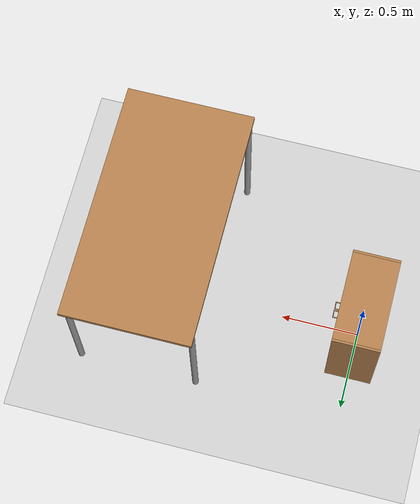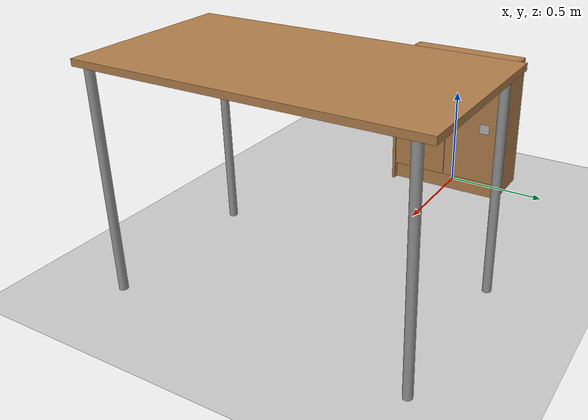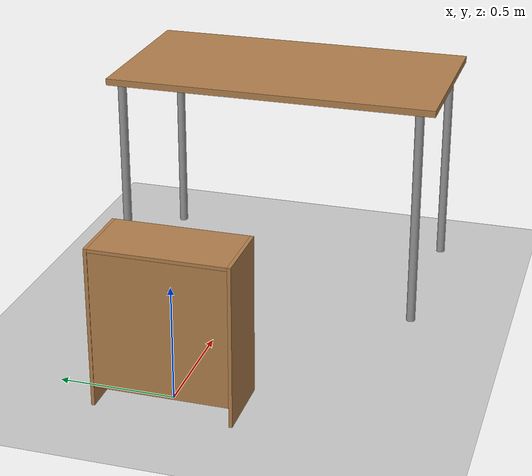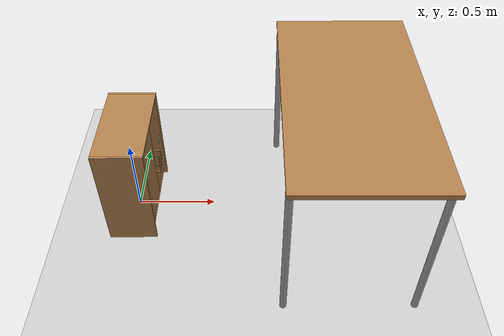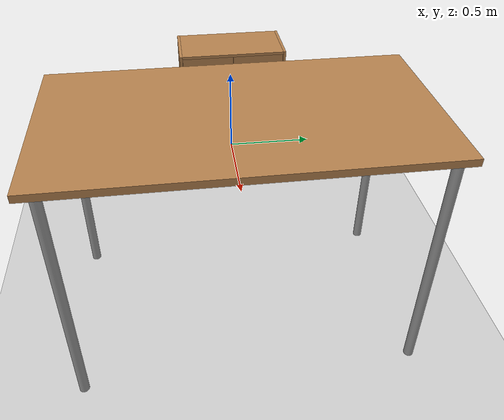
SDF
<sdf version="1.5">
 <world name="default">
  <light name="sun" type="directional">
   <pose>0 0 10 0 -0 0</pose>
   <diffuse>0.8 0.8 0.8 1</diffuse>
   <specular>0.2 0.2 0.2 1</specular>
   <attenuation>
    <range>1000</range>
    <constant>0.9</constant>
    <linear>0.01</linear>
    <quadratic>0.001</quadratic>
   </attenuation>
   <direction>-0.5 0.1 -0.9</direction>
  </light>
  <physics name="dart_1ms" default="1" type="dart">
   <max_step_size>0.001</max_step_size>
   <real_time_factor>1</real_time_factor>
   <real_time_update_rate>1000</real_time_update_rate>
  </physics>
  <physics name="dart_2ms" default="0" type="dart">
   <max_step_size>0.002</max_step_size>
   <real_time_factor>1</real_time_factor>
   <real_time_update_rate>500</real_time_update_rate>
  </physics>
  <physics name="dart_3ms" default="0" type="dart">
   <max_step_size>0.003</max_step_size>
   <real_time_factor>1</real_time_factor>
   <real_time_update_rate>333</real_time_update_rate>
  </physics>
  <physics name="ode_1ms" default="0" type="ode">
   <max_step_size>0.001</max_step_size>
   <real_time_factor>1</real_time_factor>
   <real_time_update_rate>1000</real_time_update_rate>
  </physics>
  <physics name="ode_2ms" default="0" type="ode">
   <max_step_size>0.002</max_step_size>
   <real_time_factor>1</real_time_factor>
   <real_time_update_rate>500</real_time_update_rate>
  </physics>
  <physics name="ode_3ms" default="0" type="ode">
   <max_step_size>0.003</max_step_size>
   <real_time_factor>1</real_time_factor>
   <real_time_update_rate>333</real_time_update_rate>
  </physics>
  <model name="ground_plane">
   <static>1</static>
   <link name="link">
    <collision name="collision">
     <geometry><plane><normal>0 0 1</normal><size>100 100</size></plane></geometry>
     <surface><friction><ode><mu>100</mu><mu2>50</mu2></ode></friction></surface>
    </collision>
    <visual name="visual">
     <cast_shadows>0</cast_shadows>
     <geometry><plane><normal>0 0 1</normal><size>100 100</size></plane></geometry>
     <material>
      <script><uri>file://media/materials/scripts/gazebo.material</uri><name>Gazebo/Grey</name></script>
     </material>
    </visual>
   </link>
  </model>
  <physics name="default_physics" default="0" type="ode">
   <max_step_size>0.001</max_step_size>
   <real_time_factor>1</real_time_factor>
   <real_time_update_rate>1000</real_time_update_rate>
   <gravity>0 0 -9.8</gravity>
   <magnetic_field>6e-06 2.3e-05 -4.2e-05</magnetic_field>
  </physics>
  <scene><ambient>0.4 0.4 0.4 1</ambient><background>0.7 0.7 0.7 1</background><shadows>1</shadows></scene>
  <audio><device>default</device></audio>
  <spherical_coordinates>
   <surface_model>EARTH_WGS84</surface_model>
   <latitude_deg>0</latitude_deg>
   <longitude_deg>0</longitude_deg>
   <elevation>0</elevation>
   <heading_deg>0</heading_deg>
  </spherical_coordinates>
  <model name="table">
   <static>1</static>
   <link name="link">
    <collision name="surface">
     <pose>0 0 1 0 -0 0</pose>
     <geometry><box><size>1.5 0.8 0.03</size></box></geometry>
     <surface><friction><ode><mu>0.6</mu><mu2>0.6</mu2></ode></friction></surface>
    </collision>
    <visual name="visual1">
     <pose>0 0 1 0 -0 0</pose>
     <geometry><box><size>1.5 0.8 0.03</size></box></geometry>
     <material>
      <script><uri>file://media/materials/scripts/gazebo.material</uri><name>Gazebo/Wood</name></script>
     </material>
    </visual>
    <collision name="front_left_leg">
     <pose>0.68 0.38 0.5 0 -0 0</pose>
     <geometry><cylinder><radius>0.02</radius><length>1</length></cylinder></geometry>
    </collision>
    <visual name="front_left_leg">
     <pose>0.68 0.38 0.5 0 -0 0</pose>
     <geometry><cylinder><radius>0.02</radius><length>1</length></cylinder></geometry>
     <material>
      <script><uri>file://media/materials/scripts/gazebo.material</uri><name>Gazebo/Grey</name></script>
     </material>
    </visual>
    <collision name="front_right_leg">
     <pose>0.68 -0.38 0.5 0 -0 0</pose>
     <geometry><cylinder><radius>0.02</radius><length>1</length></cylinder></geometry>
    </collision>
    <visual name="front_right_leg">
     <pose>0.68 -0.38 0.5 0 -0 0</pose>
     <geometry><cylinder><radius>0.02</radius><length>1</length></cylinder></geometry>
     <material>
      <script><uri>file://media/materials/scripts/gazebo.material</uri><name>Gazebo/Grey</name></script>
     </material>
    </visual>
    <collision name="back_right_leg">
     <pose>-0.68 -0.38 0.5 0 -0 0</pose>
     <geometry><cylinder><radius>0.02</radius><length>1</length></cylinder></geometry>
    </collision>
    <visual name="back_right_leg">
     <pose>-0.68 -0.38 0.5 0 -0 0</pose>
     <geometry><cylinder><radius>0.02</radius><length>1</length></cylinder></geometry>
     <material>
      <script><uri>file://media/materials/scripts/gazebo.material</uri><name>Gazebo/Grey</name></script>
     </material>
    </visual>
    <collision name="back_left_leg">
     <pose>-0.68 0.38 0.5 0 -0 0</pose>
     <geometry><cylinder><radius>0.02</radius><length>1</length></cylinder></geometry>
    </collision>
    <visual name="back_left_leg">
     <pose>-0.68 0.38 0.5 0 -0 0</pose>
     <geometry><cylinder><radius>0.02</radius><length>1</length></cylinder></geometry>
     <material>
      <script><uri>file://media/materials/scripts/gazebo.material</uri><name>Gazebo/Grey</name></script>
     </material>
    </visual>
   </link>
   <pose>1.31668 -0.117359 0 0 -0 1.5708</pose>
  </model>
  <include><uri>model://cabinet_door</uri></include>
 </world>
</sdf>

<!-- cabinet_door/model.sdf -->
<sdf version="1.5">
  <model name="cabinet_door">
    <link name="cabinet">
      <pose>0 0 0.35 0 0 0</pose>
      <inertial>
        <mass>16.0</mass>
        <pose>0 0 0 0 0 0</pose>
        <inertia>
          <ixx>1.59</ixx>
          <ixy>0</ixy>
          <ixz>0</ixz>
          <iyy>1.12</iyy>
          <iyz>0</iyz>
          <izz>0.91</izz>
        </inertia>
      </inertial>
      <collision name="back">
        <pose>-0.14 0 0.035 0 0 0</pose>
        <geometry>
          <box>
            <size>0.015 0.585 0.6</size>
          </box>
        </geometry>
      </collision>
      <visual name="visual1">
        <pose>-0.14 0 0.035 0 0 0</pose>
        <geometry>
          <box>
            <size>0.015 0.585 0.6</size>
          </box>
        </geometry>
        <material>
          <script>
            <uri>file://media/materials/scripts/gazebo.material</uri>
            <name>Gazebo/Wood</name>
          </script>
        </material>
      </visual>
      <collision name="left_side">
        <pose>0 -0.2925 0 0 0 0</pose>
        <geometry>
          <box>
            <size>0.3 0.015 0.7</size>
          </box>
        </geometry>
      </collision>
      <visual name="visual2">
        <pose>0 -0.2925 0 0 0 0</pose>
        <geometry>
          <box>
            <size>0.3 0.015 0.7</size>
          </box>
        </geometry>
        <material>
          <script>
            <uri>file://media/materials/scripts/gazebo.material</uri>
            <name>Gazebo/Wood</name>
          </script>
        </material>
      </visual>
      <collision name="right_side">
        <pose>0 0.2925 0 0 0 0</pose>
        <geometry>
          <box>
            <size>0.3 0.015 0.7</size>
          </box>
        </geometry>
      </collision>
      <visual name="visual3">
        <pose>0 0.2925 0 0 0 0</pose>
        <geometry>
          <box>
            <size>0.3 0.015 0.7</size>
          </box>
        </geometry>
        <material>
          <script>
            <uri>file://media/materials/scripts/gazebo.material</uri>
            <name>Gazebo/Wood</name>
          </script>
        </material>
      </visual>
      <collision name="bottom">
        <pose>-0.002 0 -0.2525 0 0 0</pose>
        <geometry>
          <box>
            <size>0.26 0.57 0.015</size>
          </box>
        </geometry>
      </collision>
      <visual name="visual4">
        <pose>-0.002 0 -0.2525 0 0 0</pose>
        <geometry>
          <box>
            <size>0.26 0.57 0.015</size>
          </box>
        </geometry>
        <material>
          <script>
            <uri>file://media/materials/scripts/gazebo.material</uri>
            <name>Gazebo/Wood</name>
          </script>
        </material>
      </visual>
      <collision name="top">
        <pose>0 0 0.3425 0 0 0</pose>
        <geometry>
          <box>
            <size>0.3 0.57 0.015</size>
          </box>
        </geometry>
      </collision>
      <visual name="visual5">
        <pose>0 0 0.3425 0 0 0</pose>
        <geometry>
          <box>
            <size>0.3 0.57 0.015</size>
          </box>
        </geometry>
        <material>
          <script>
            <uri>file://media/materials/scripts/gazebo.material</uri>
            <name>Gazebo/Wood</name>
          </script>
        </material>
      </visual>
      <collision name="middle_shelf">
        <pose>-0.002 0 0.0475 0 0 0</pose>
        <geometry>
          <box>
            <size>0.26 0.57 0.015</size>
          </box>
        </geometry>
      </collision>
      <visual name="visual6">
        <pose>-0.002 0 0.0475 0 0 0</pose>
        <geometry>
          <box>
            <size>0.26 0.57 0.015</size>
          </box>
        </geometry>
        <material>
          <script>
            <uri>file://media/materials/scripts/gazebo.material</uri>
            <name>Gazebo/Wood</name>
          </script>
        </material>
      </visual>
      <collision name="low_front">
        <pose>0.115 0 -0.3025 0 0 0</pose>
        <geometry>
          <box>
            <size>0.015 0.57 0.09</size>
          </box>
        </geometry>
      </collision>
      <visual name="visual7">
        <pose>0.115 0 -0.3025 0 0 0</pose>
        <geometry>
          <box>
            <size>0.015 0.57 0.09</size>
          </box>
        </geometry>
        <material>
          <script>
            <uri>file://media/materials/scripts/gazebo.material</uri>
            <name>Gazebo/Wood</name>
          </script>
        </material>
      </visual>
    </link>
    <link name="right_door">
      <pose>0.135 0.2835 0.3875 0 0 0</pose>
      <inertial>
        <mass>1.7</mass>
        <pose>0 -0.141 0 0 0 0</pose>
        <inertia>
          <ixx>0.06</ixx>
          <ixy>0</ixy>
          <ixz>0</ixz>
          <iyy>0.49</iyy>
          <iyz>0</iyz>
          <izz>0.111</izz>
        </inertia>
      </inertial>
      <collision name="right_face">
        <pose>0 -0.141 0 0 0 0</pose>
        <geometry>
          <box>
            <size>0.015 0.282 0.595</size>
          </box>
        </geometry>
      </collision>
      <visual name="visual8">
        <pose>0 -0.141 0 0 0 0</pose>
        <geometry>
          <box>
            <size>0.015 0.282 0.595</size>
          </box>
        </geometry>
        <material>
          <script>
            <uri>file://media/materials/scripts/gazebo.material</uri>
            <name>Gazebo/Wood</name>
          </script>
        </material>
      </visual>
      <collision name="right_handle">
        <pose>0.04304 -0.2555 0 0 0 0</pose>
        <geometry>
          <box>
            <size>0.005 0.005 0.136</size>
          </box>
        </geometry>
      </collision>
      <visual name="visual9">
        <pose>0.04304 -0.2555 0 0 0 0</pose>
        <geometry>
          <box>
            <size>0.005 0.005 0.136</size>
          </box>
        </geometry>
        <material>
          <script>
            <uri>file://media/materials/scripts/gazebo.material</uri>
            <name>Gazebo/Wood</name>
          </script>
        </material>
      </visual>
      <collision name="right_handle_up">
        <pose>0.02475 -0.2555 0.0656 0 0 0</pose>
        <geometry>
          <box>
            <size>0.04 0.005 0.005</size>
          </box>
        </geometry>
      </collision>
      <visual name="visual10">
        <pose>0.02475 -0.2555 0.0656 0 0 0</pose>
        <geometry>
          <box>
            <size>0.04 0.005 0.005</size>
          </box>
        </geometry>
        <material>
          <script>
            <uri>file://media/materials/scripts/gazebo.material</uri>
            <name>Gazebo/Wood</name>
          </script>
        </material>
      </visual>
      <collision name="right_handle_bo">
        <pose>0.02475 -0.2555 -0.06542 0 0 0</pose>
        <geometry>
          <box>
            <size>0.04 0.005 0.005</size>
          </box>
        </geometry>
      </collision>
      <visual name="visual11">
        <pose>0.02475 -0.2555 -0.06542 0 0 0</pose>
        <geometry>
          <box>
            <size>0.04 0.005 0.005</size>
          </box>
        </geometry>
        <material>
          <script>
            <uri>file://media/materials/scripts/gazebo.material</uri>
            <name>Gazebo/Wood</name>
          </script>
        </material>
      </visual>
      <visual name="visual_marker_0">
        <pose>0.007 -0.07 0 1.57075 0 1.57075</pose>
        <geometry>
          <mesh>
            <uri>model://ar_marker_5cm_0/meshes/ar_marker_5cm.dae</uri>
          </mesh>
        </geometry>
      </visual>
    </link>
    <joint name="right_joint" type="revolute">
      <parent>cabinet</parent>
      <child>right_door</child>
      <axis>
        <xyz>0 0 1</xyz>
        <limit>
          <lower>-0.001</lower>
          <upper>2.36</upper>
        </limit>
        <dynamics>
          <damping>0.5</damping>
          <friction>0.1</friction>
        </dynamics>
        <use_parent_model_frame>true</use_parent_model_frame>
      </axis>
      <pose>0 0 0 0 0 0</pose>
    </joint>
    <link name="left_door">
      <pose>0.135 -0.2835 0.3875 0 0 0</pose>
      <inertial>
        <mass>1.0</mass>
        <pose>0 0.141 0 0 0 0</pose>
        <inertia>
          <ixx>0.06</ixx>
          <ixy>0</ixy>
          <ixz>0</ixz>
          <iyy>0.49</iyy>
          <iyz>0</iyz>
          <izz>0.111</izz>
        </inertia>
      </inertial>
      <collision name="left_face">
        <pose>0 0.141 0 0 0 0</pose>
        <geometry>
          <box>
            <size>0.015 0.282 0.595</size>
          </box>
        </geometry>
      </collision>
      <visual name="visual12">
        <pose>0 0.141 0 0 0 0</pose>
        <geometry>
          <box>
            <size>0.015 0.282 0.595</size>
          </box>
        </geometry>
        <material>
          <script>
            <uri>file://media/materials/scripts/gazebo.material</uri>
            <name>Gazebo/Wood</name>
          </script>
        </material>
      </visual>
      <collision name="left_handle">
        <pose>0.04304 0.2555 0 0 0 0</pose>
        <geometry>
          <box>
            <size>0.005 0.005 0.136</size>
          </box>
        </geometry>
      </collision>
      <visual name="visual13">
        <pose>0.04304 0.2555 0 0 0 0</pose>
        <geometry>
          <box>
            <size>0.005 0.005 0.136</size>
          </box>
        </geometry>
        <material>
          <script>
            <uri>file://media/materials/scripts/gazebo.material</uri>
            <name>Gazebo/Wood</name>
          </script>
        </material>
      </visual>
      <collision name="left_handle_up">
        <pose>0.02475 0.2555 0.0656 0 0 0</pose>
        <geometry>
          <box>
            <size>0.04 0.005 0.005</size>
          </box>
        </geometry>
      </collision>
      <visual name="visual14">
        <pose>0.02475 0.2555 0.0656 0 0 0</pose>
        <geometry>
          <box>
            <size>0.04 0.005 0.005</size>
          </box>
        </geometry>
        <material>
          <script>
            <uri>file://media/materials/scripts/gazebo.material</uri>
            <name>Gazebo/Wood</name>
          </script>
        </material>
      </visual>
      <collision name="left_handle_bo">
        <pose>0.02475 0.2555 -0.06542 0 0 0</pose>
        <geometry>
          <box>
            <size>0.04 0.005 0.005</size>
          </box>
        </geometry>
      </collision>
      <visual name="visual15">
        <pose>0.02475 0.2555 -0.06542 0 0 0</pose>
        <geometry>
          <box>
            <size>0.04 0.005 0.005</size>
          </box>
        </geometry>
        <material>
          <script>
            <uri>file://media/materials/scripts/gazebo.material</uri>
            <name>Gazebo/Wood</name>
          </script>
        </material>
      </visual>
    </link>
    <joint name="left_joint" type="revolute">
      <parent>cabinet</parent>
      <child>left_door</child>
      <axis>
        <xyz>0 0 1</xyz>
        <limit>
          <lower>-2.36</lower>
          <upper>0.001</upper>
        </limit>
        <dynamics>
          <damping>0.5</damping>
          <friction>0.1</friction>
        </dynamics>
        <use_parent_model_frame>true</use_parent_model_frame>
      </axis>
      <pose>0 0 0 0 0 0</pose>
    </joint>
  </model>
</sdf>
